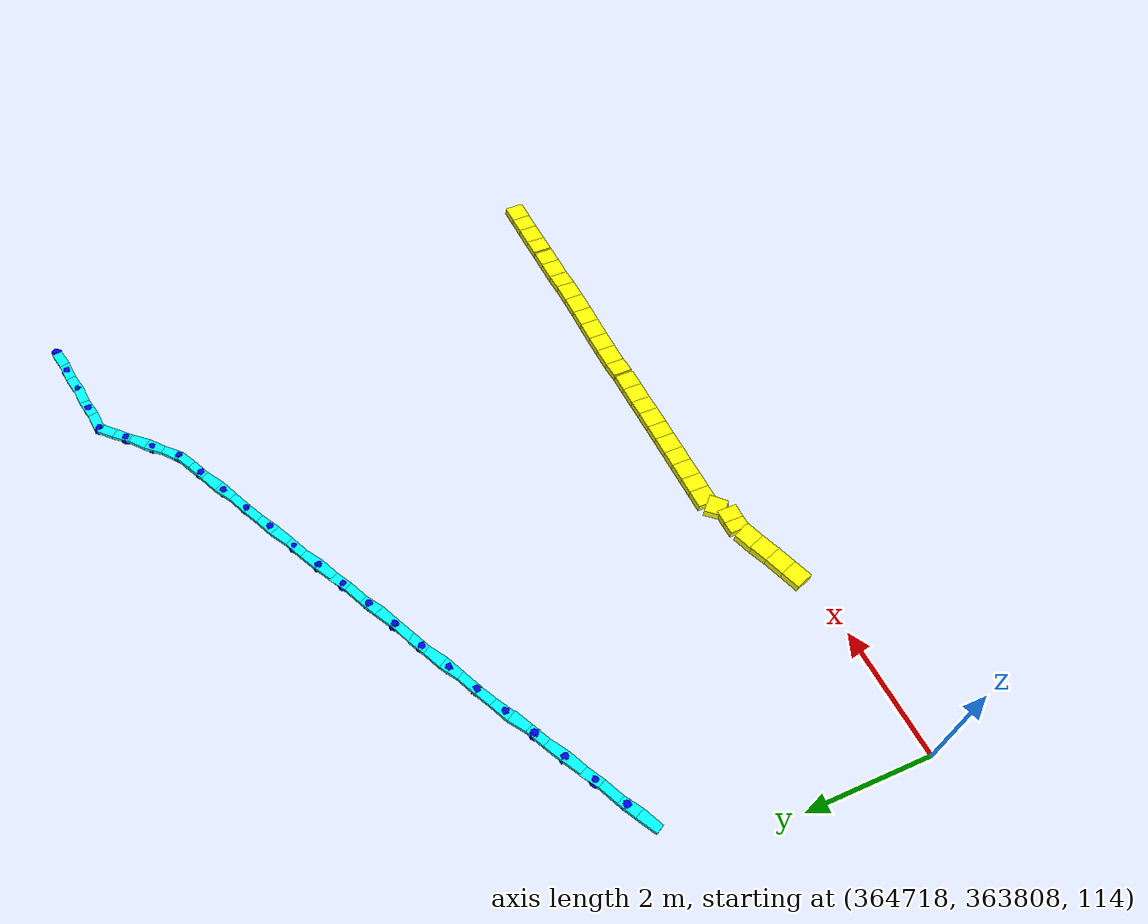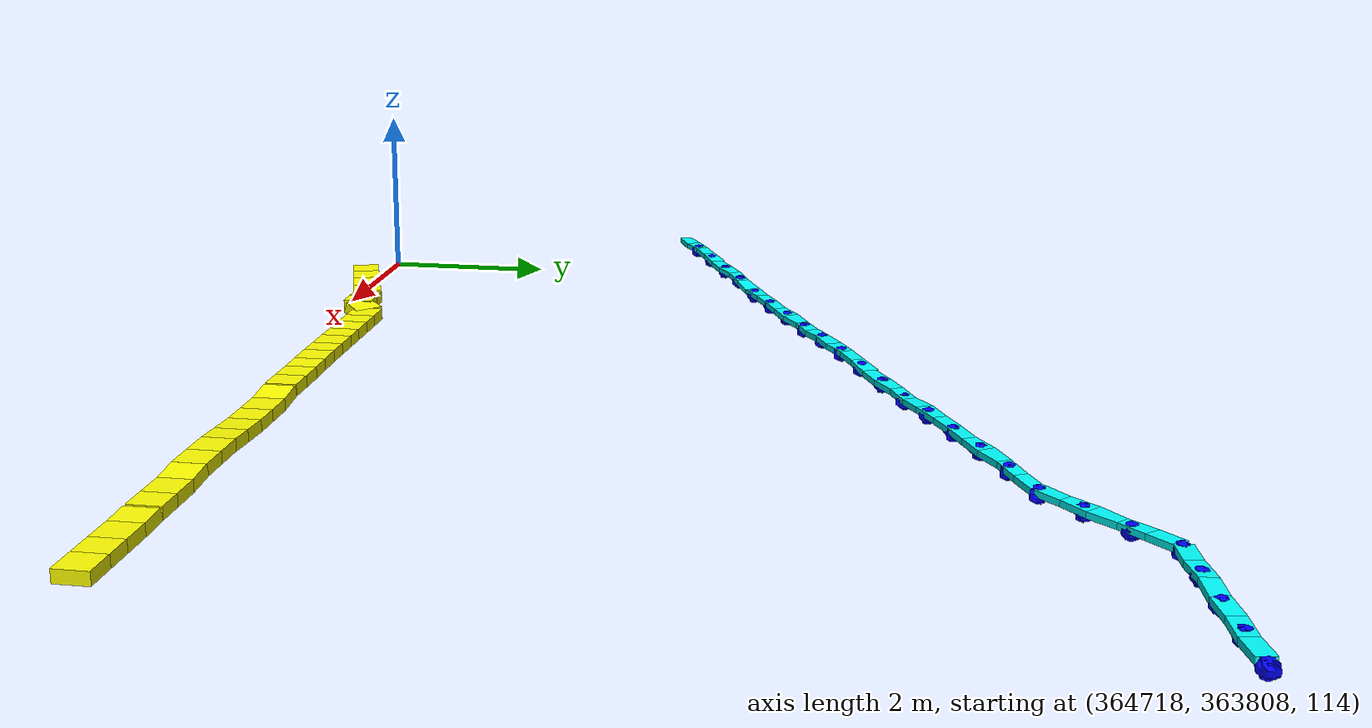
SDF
<sdf version="1.5">
 <world name="default">
  <include><uri>model://sun</uri></include>
  <model name="road_segment_245">
   <static>true</static>
   <pose>364720.8775 363808.49 114.62 0 -0.0 0.3487710036688817</pose>
   <link name="link">
    <collision name="collision">
     <geometry><box><size>0.2926174978018071 0.3 0.12</size></box></geometry>
     <surface><friction><ode><mu>0.02</mu><mu2>0.02</mu2></ode></friction></surface>
    </collision>
    <visual name="visual">
     <geometry><box><size>0.2926174978018071 0.3 0.12</size></box></geometry>
     <material><ambient>1 1 0 1</ambient><diffuse>1 1 0 1</diffuse><emissive>1 1 0 1</emissive></material>
    </visual>
   </link>
  </model>
  <model name="road_segment_246">
   <static>true</static>
   <pose>364721.1525 363808.59 114.6175000001026 0 0.01708548976052507 0.34877100348193735</pose>
   <link name="link">
    <collision name="collision">
     <geometry><box><size>0.29266021254365493 0.3 0.12</size></box></geometry>
     <surface><friction><ode><mu>0.02</mu><mu2>0.02</mu2></ode></friction></surface>
    </collision>
    <visual name="visual">
     <geometry><box><size>0.29266021254365493 0.3 0.12</size></box></geometry>
     <material><ambient>1 1 0 1</ambient><diffuse>1 1 0 1</diffuse><emissive>1 1 0 1</emissive></material>
    </visual>
   </link>
  </model>
  <model name="road_segment_247">
   <static>true</static>
   <pose>364721.4275 363808.69 114.60750000010259 0 0.05121663028058738 0.3487710035499171</pose>
   <link name="link">
    <collision name="collision">
     <geometry><box><size>0.29300170644945156 0.3 0.12</size></box></geometry>
     <surface><friction><ode><mu>0.02</mu><mu2>0.02</mu2></ode></friction></surface>
    </collision>
    <visual name="visual">
     <geometry><box><size>0.29300170644945156 0.3 0.12</size></box></geometry>
     <material><ambient>1 1 0 1</ambient><diffuse>1 1 0 1</diffuse><emissive>1 1 0 1</emissive></material>
    </visual>
   </link>
  </model>
  <model name="road_segment_248">
   <static>true</static>
   <pose>364721.7025 363808.79000000004 114.6 0 -0.0 0.3487710036688817</pose>
   <link name="link">
    <collision name="collision">
     <geometry><box><size>0.2926174978018071 0.3 0.12</size></box></geometry>
     <surface><friction><ode><mu>0.02</mu><mu2>0.02</mu2></ode></friction></surface>
    </collision>
    <visual name="visual">
     <geometry><box><size>0.2926174978018071 0.3 0.12</size></box></geometry>
     <material><ambient>1 1 0 1</ambient><diffuse>1 1 0 1</diffuse><emissive>1 1 0 1</emissive></material>
    </visual>
   </link>
  </model>
  <model name="road_segment_249">
   <static>true</static>
   <pose>364721.94000000006 363808.84 114.6 0 -0.0 0.0</pose>
   <link name="link">
    <collision name="collision">
     <geometry><box><size>0.20000000001164153 0.3 0.12</size></box></geometry>
     <surface><friction><ode><mu>0.2</mu><mu2>0.2</mu2></ode></friction></surface>
    </collision>
    <visual name="visual">
     <geometry><box><size>0.20000000001164153 0.3 0.12</size></box></geometry>
     <material><ambient>1 1 0 1</ambient><diffuse>1 1 0 1</diffuse><emissive>1 1 0 1</emissive></material>
    </visual>
   </link>
  </model>
  <model name="road_segment_250">
   <static>true</static>
   <pose>364722.14 363808.84 114.6 0 -0.0 0.0</pose>
   <link name="link">
    <collision name="collision">
     <geometry><box><size>0.19999999995343387 0.3 0.12</size></box></geometry>
     <surface><friction><ode><mu>0.2</mu><mu2>0.2</mu2></ode></friction></surface>
    </collision>
    <visual name="visual">
     <geometry><box><size>0.19999999995343387 0.3 0.12</size></box></geometry>
     <material><ambient>1 1 0 1</ambient><diffuse>1 1 0 1</diffuse><emissive>1 1 0 1</emissive></material>
    </visual>
   </link>
  </model>
  <model name="road_segment_251">
   <static>true</static>
   <pose>364722.33999999997 363808.94 114.58500000014696 0 0.10567093200392158 0.7853981632519291</pose>
   <link name="link">
    <collision name="collision">
     <geometry><box><size>0.2844292530109974 0.3 0.12</size></box></geometry>
     <surface><friction><ode><mu>0.2</mu><mu2>0.2</mu2></ode></friction></surface>
    </collision>
    <visual name="visual">
     <geometry><box><size>0.2844292530109974 0.3 0.12</size></box></geometry>
     <material><ambient>1 1 0 1</ambient><diffuse>1 1 0 1</diffuse><emissive>1 1 0 1</emissive></material>
    </visual>
   </link>
  </model>
  <model name="road_segment_252">
   <static>true</static>
   <pose>364722.57333333336 363809.04 114.57000000034778 0 -4.038902545803123e-10 0.0</pose>
   <link name="link">
    <collision name="collision">
     <geometry><box><size>0.26666666666278616 0.3 0.12</size></box></geometry>
     <surface><friction><ode><mu>0.02</mu><mu2>0.02</mu2></ode></friction></surface>
    </collision>
    <visual name="visual">
     <geometry><box><size>0.26666666666278616 0.3 0.12</size></box></geometry>
     <material><ambient>1 1 0 1</ambient><diffuse>1 1 0 1</diffuse><emissive>1 1 0 1</emissive></material>
    </visual>
   </link>
  </model>
  <model name="road_segment_253">
   <static>true</static>
   <pose>364722.83999999997 363809.04 114.57000000040163 0 -0.0 0.0</pose>
   <link name="link">
    <collision name="collision">
     <geometry><box><size>0.26666666666278616 0.3 0.12</size></box></geometry>
     <surface><friction><ode><mu>0.02</mu><mu2>0.02</mu2></ode></friction></surface>
    </collision>
    <visual name="visual">
     <geometry><box><size>0.26666666666278616 0.3 0.12</size></box></geometry>
     <material><ambient>1 1 0 1</ambient><diffuse>1 1 0 1</diffuse><emissive>1 1 0 1</emissive></material>
    </visual>
   </link>
  </model>
  <model name="road_segment_254">
   <static>true</static>
   <pose>364723.1066666667 363809.04 114.57000000040163 0 5.3290705182782996e-14 0.0</pose>
   <link name="link">
    <collision name="collision">
     <geometry><box><size>0.26666666666278616 0.3 0.12</size></box></geometry>
     <surface><friction><ode><mu>0.02</mu><mu2>0.02</mu2></ode></friction></surface>
    </collision>
    <visual name="visual">
     <geometry><box><size>0.26666666666278616 0.3 0.12</size></box></geometry>
     <material><ambient>1 1 0 1</ambient><diffuse>1 1 0 1</diffuse><emissive>1 1 0 1</emissive></material>
    </visual>
   </link>
  </model>
  <model name="road_segment_255">
   <static>true</static>
   <pose>364723.3733333333 363809.04 114.57000000026774 0 1.0041034670539973e-09 0.0</pose>
   <link name="link">
    <collision name="collision">
     <geometry><box><size>0.26666666666278616 0.3 0.12</size></box></geometry>
     <surface><friction><ode><mu>0.02</mu><mu2>0.02</mu2></ode></friction></surface>
    </collision>
    <visual name="visual">
     <geometry><box><size>0.26666666666278616 0.3 0.12</size></box></geometry>
     <material><ambient>1 1 0 1</ambient><diffuse>1 1 0 1</diffuse><emissive>1 1 0 1</emissive></material>
    </visual>
   </link>
  </model>
  <model name="road_segment_256">
   <static>true</static>
   <pose>364723.64 363809.04 114.57000000013387 0 -1.0658141034230154e-13 0.0</pose>
   <link name="link">
    <collision name="collision">
     <geometry><box><size>0.2666666667209938 0.3 0.12</size></box></geometry>
     <surface><friction><ode><mu>0.2</mu><mu2>0.2</mu2></ode></friction></surface>
    </collision>
    <visual name="visual">
     <geometry><box><size>0.2666666667209938 0.3 0.12</size></box></geometry>
     <material><ambient>1 1 0 1</ambient><diffuse>1 1 0 1</diffuse><emissive>1 1 0 1</emissive></material>
    </visual>
   </link>
  </model>
  <model name="road_segment_257">
   <static>true</static>
   <pose>364723.90666666673 363809.04 114.57000000013387 0 5.3290705182782996e-14 0.0</pose>
   <link name="link">
    <collision name="collision">
     <geometry><box><size>0.26666666666278616 0.3 0.12</size></box></geometry>
     <surface><friction><ode><mu>0.2</mu><mu2>0.2</mu2></ode></friction></surface>
    </collision>
    <visual name="visual">
     <geometry><box><size>0.26666666666278616 0.3 0.12</size></box></geometry>
     <material><ambient>1 1 0 1</ambient><diffuse>1 1 0 1</diffuse><emissive>1 1 0 1</emissive></material>
    </visual>
   </link>
  </model>
  <model name="road_segment_258">
   <static>true</static>
   <pose>364724.17333333334 363809.04 114.56833333343373 0 0.012499349270545473 0.0</pose>
   <link name="link">
    <collision name="collision">
     <geometry><box><size>0.26668749918321805 0.3 0.12</size></box></geometry>
     <surface><friction><ode><mu>0.2</mu><mu2>0.2</mu2></ode></friction></surface>
    </collision>
    <visual name="visual">
     <geometry><box><size>0.26668749918321805 0.3 0.12</size></box></geometry>
     <material><ambient>1 1 0 1</ambient><diffuse>1 1 0 1</diffuse><emissive>1 1 0 1</emissive></material>
    </visual>
   </link>
  </model>
  <model name="road_segment_259">
   <static>true</static>
   <pose>364724.44000000006 363809.04 114.563333333166 0 0.02499479537521138 0.0</pose>
   <link name="link">
    <collision name="collision">
     <geometry><box><size>0.2667499869910646 0.3 0.12</size></box></geometry>
     <surface><friction><ode><mu>0.2</mu><mu2>0.2</mu2></ode></friction></surface>
    </collision>
    <visual name="visual">
     <geometry><box><size>0.2667499869910646 0.3 0.12</size></box></geometry>
     <material><ambient>1 1 0 1</ambient><diffuse>1 1 0 1</diffuse><emissive>1 1 0 1</emissive></material>
    </visual>
   </link>
  </model>
  <model name="road_segment_260">
   <static>true</static>
   <pose>364724.70666666667 363809.04 114.55999999959839 0 5.3290705182782996e-14 0.0</pose>
   <link name="link">
    <collision name="collision">
     <geometry><box><size>0.26666666666278616 0.3 0.12</size></box></geometry>
     <surface><friction><ode><mu>0.2</mu><mu2>0.2</mu2></ode></friction></surface>
    </collision>
    <visual name="visual">
     <geometry><box><size>0.26666666666278616 0.3 0.12</size></box></geometry>
     <material><ambient>1 1 0 1</ambient><diffuse>1 1 0 1</diffuse><emissive>1 1 0 1</emissive></material>
    </visual>
   </link>
  </model>
  <model name="road_segment_261">
   <static>true</static>
   <pose>364724.99 363809.04 114.55999999959838 0 -0.0 0.0</pose>
   <link name="link">
    <collision name="collision">
     <geometry><box><size>0.29999999998835847 0.3 0.12</size></box></geometry>
     <surface><friction><ode><mu>0.02</mu><mu2>0.02</mu2></ode></friction></surface>
    </collision>
    <visual name="visual">
     <geometry><box><size>0.29999999998835847 0.3 0.12</size></box></geometry>
     <material><ambient>1 1 0 1</ambient><diffuse>1 1 0 1</diffuse><emissive>1 1 0 1</emissive></material>
    </visual>
   </link>
  </model>
  <model name="road_segment_262">
   <static>true</static>
   <pose>364725.29000000004 363809.04 114.54000000029977 0 0.13255152770746775 0.0</pose>
   <link name="link">
    <collision name="collision">
     <geometry><box><size>0.3026549188114938 0.3 0.12</size></box></geometry>
     <surface><friction><ode><mu>0.02</mu><mu2>0.02</mu2></ode></friction></surface>
    </collision>
    <visual name="visual">
     <geometry><box><size>0.3026549188114938 0.3 0.12</size></box></geometry>
     <material><ambient>1 1 0 1</ambient><diffuse>1 1 0 1</diffuse><emissive>1 1 0 1</emissive></material>
    </visual>
   </link>
  </model>
  <model name="road_segment_263">
   <static>true</static>
   <pose>364725.59 363809.04 114.52000000076833 0 1.5522042907848637e-09 0.0</pose>
   <link name="link">
    <collision name="collision">
     <geometry><box><size>0.30000000004656613 0.3 0.12</size></box></geometry>
     <surface><friction><ode><mu>0.02</mu><mu2>0.02</mu2></ode></friction></surface>
    </collision>
    <visual name="visual">
     <geometry><box><size>0.30000000004656613 0.3 0.12</size></box></geometry>
     <material><ambient>1 1 0 1</ambient><diffuse>1 1 0 1</diffuse><emissive>1 1 0 1</emissive></material>
    </visual>
   </link>
  </model>
  <model name="road_segment_264">
   <static>true</static>
   <pose>364725.89 363809.04 114.5200000005355 0 -0.0 0.0</pose>
   <link name="link">
    <collision name="collision">
     <geometry><box><size>0.29999999998835847 0.3 0.12</size></box></geometry>
     <surface><friction><ode><mu>0.02</mu><mu2>0.02</mu2></ode></friction></surface>
    </collision>
    <visual name="visual">
     <geometry><box><size>0.29999999998835847 0.3 0.12</size></box></geometry>
     <material><ambient>1 1 0 1</ambient><diffuse>1 1 0 1</diffuse><emissive>1 1 0 1</emissive></material>
    </visual>
   </link>
  </model>
  <model name="road_segment_265">
   <static>true</static>
   <pose>364726.19000000006 363809.04 114.52750000019135 0 -0.049958393435259124 0.0</pose>
   <link name="link">
    <collision name="collision">
     <geometry><box><size>0.30037476587151263 0.3 0.12</size></box></geometry>
     <surface><friction><ode><mu>0.2</mu><mu2>0.2</mu2></ode></friction></surface>
    </collision>
    <visual name="visual">
     <geometry><box><size>0.30037476587151263 0.3 0.12</size></box></geometry>
     <material><ambient>1 1 0 1</ambient><diffuse>1 1 0 1</diffuse><emissive>1 1 0 1</emissive></material>
    </visual>
   </link>
  </model>
  <model name="road_segment_266">
   <static>true</static>
   <pose>364726.49 363809.04 114.54249999985666 0 -0.049958395786771664 0.0</pose>
   <link name="link">
    <collision name="collision">
     <geometry><box><size>0.3003747659068294 0.3 0.12</size></box></geometry>
     <surface><friction><ode><mu>0.2</mu><mu2>0.2</mu2></ode></friction></surface>
    </collision>
    <visual name="visual">
     <geometry><box><size>0.3003747659068294 0.3 0.12</size></box></geometry>
     <material><ambient>1 1 0 1</ambient><diffuse>1 1 0 1</diffuse><emissive>1 1 0 1</emissive></material>
    </visual>
   </link>
  </model>
  <model name="road_segment_267">
   <static>true</static>
   <pose>364726.79000000004 363809.04 114.54999999986612 0 -0.0 0.0</pose>
   <link name="link">
    <collision name="collision">
     <geometry><box><size>0.29999999998835847 0.3 0.12</size></box></geometry>
     <surface><friction><ode><mu>0.02</mu><mu2>0.02</mu2></ode></friction></surface>
    </collision>
    <visual name="visual">
     <geometry><box><size>0.29999999998835847 0.3 0.12</size></box></geometry>
     <material><ambient>1 1 0 1</ambient><diffuse>1 1 0 1</diffuse><emissive>1 1 0 1</emissive></material>
    </visual>
   </link>
  </model>
  <model name="road_segment_268">
   <static>true</static>
   <pose>364727.08999999997 363809.04 114.54999999986612 0 -0.0 0.0</pose>
   <link name="link">
    <collision name="collision">
     <geometry><box><size>0.29999999998835847 0.3 0.12</size></box></geometry>
     <surface><friction><ode><mu>0.02</mu><mu2>0.02</mu2></ode></friction></surface>
    </collision>
    <visual name="visual">
     <geometry><box><size>0.29999999998835847 0.3 0.12</size></box></geometry>
     <material><ambient>1 1 0 1</ambient><diffuse>1 1 0 1</diffuse><emissive>1 1 0 1</emissive></material>
    </visual>
   </link>
  </model>
  <model name="road_segment_269">
   <static>true</static>
   <pose>364727.39 363809.04 114.53500000006693 0 0.09966865115029519 0.0</pose>
   <link name="link">
    <collision name="collision">
     <geometry><box><size>0.30149626863999845 0.3 0.12</size></box></geometry>
     <surface><friction><ode><mu>0.2</mu><mu2>0.2</mu2></ode></friction></surface>
    </collision>
    <visual name="visual">
     <geometry><box><size>0.30149626863999845 0.3 0.12</size></box></geometry>
     <material><ambient>1 1 0 1</ambient><diffuse>1 1 0 1</diffuse><emissive>1 1 0 1</emissive></material>
    </visual>
   </link>
  </model>
  <model name="road_segment_270">
   <static>true</static>
   <pose>364727.69000000006 363809.04 114.52000000026774 0 -0.0 0.0</pose>
   <link name="link">
    <collision name="collision">
     <geometry><box><size>0.29999999998835847 0.3 0.12</size></box></geometry>
     <surface><friction><ode><mu>0.2</mu><mu2>0.2</mu2></ode></friction></surface>
    </collision>
    <visual name="visual">
     <geometry><box><size>0.29999999998835847 0.3 0.12</size></box></geometry>
     <material><ambient>1 1 0 1</ambient><diffuse>1 1 0 1</diffuse><emissive>1 1 0 1</emissive></material>
    </visual>
   </link>
  </model>
  <model name="road_segment_271">
   <static>true</static>
   <pose>364727.99 363809.04 114.52000000026774 0 -0.0 0.0</pose>
   <link name="link">
    <collision name="collision">
     <geometry><box><size>0.29999999998835847 0.3 0.12</size></box></geometry>
     <surface><friction><ode><mu>0.02</mu><mu2>0.02</mu2></ode></friction></surface>
    </collision>
    <visual name="visual">
     <geometry><box><size>0.29999999998835847 0.3 0.12</size></box></geometry>
     <material><ambient>1 1 0 1</ambient><diffuse>1 1 0 1</diffuse><emissive>1 1 0 1</emissive></material>
    </visual>
   </link>
  </model>
  <model name="road_segment_272">
   <static>true</static>
   <pose>364728.29000000004 363809.04 114.51500000026338 0 0.033320995908561586 0.0</pose>
   <link name="link">
    <collision name="collision">
     <geometry><box><size>0.300166620384728 0.3 0.12</size></box></geometry>
     <surface><friction><ode><mu>0.02</mu><mu2>0.02</mu2></ode></friction></surface>
    </collision>
    <visual name="visual">
     <geometry><box><size>0.300166620384728 0.3 0.12</size></box></geometry>
     <material><ambient>1 1 0 1</ambient><diffuse>1 1 0 1</diffuse><emissive>1 1 0 1</emissive></material>
    </visual>
   </link>
  </model>
  <model name="road_segment_273">
   <static>true</static>
   <pose>364728.58999999997 363809.04 114.51000000019646 0 4.171359554230832e-10 0.0</pose>
   <link name="link">
    <collision name="collision">
     <geometry><box><size>0.29999999998835847 0.3 0.12</size></box></geometry>
     <surface><friction><ode><mu>0.02</mu><mu2>0.02</mu2></ode></friction></surface>
    </collision>
    <visual name="visual">
     <geometry><box><size>0.29999999998835847 0.3 0.12</size></box></geometry>
     <material><ambient>1 1 0 1</ambient><diffuse>1 1 0 1</diffuse><emissive>1 1 0 1</emissive></material>
    </visual>
   </link>
  </model>
  <model name="road_segment_274">
   <static>true</static>
   <pose>364728.89 363809.04 114.51000000013389 0 -0.0 0.0</pose>
   <link name="link">
    <collision name="collision">
     <geometry><box><size>0.30000000004656613 0.3 0.12</size></box></geometry>
     <surface><friction><ode><mu>0.02</mu><mu2>0.02</mu2></ode></friction></surface>
    </collision>
    <visual name="visual">
     <geometry><box><size>0.30000000004656613 0.3 0.12</size></box></geometry>
     <material><ambient>1 1 0 1</ambient><diffuse>1 1 0 1</diffuse><emissive>1 1 0 1</emissive></material>
    </visual>
   </link>
  </model>
  <model name="road_segment_275">
   <static>true</static>
   <pose>364729.19000000006 363809.04 114.51000000013389 0 -0.0 0.0</pose>
   <link name="link">
    <collision name="collision">
     <geometry><box><size>0.29999999998835847 0.3 0.12</size></box></geometry>
     <surface><friction><ode><mu>0.02</mu><mu2>0.02</mu2></ode></friction></surface>
    </collision>
    <visual name="visual">
     <geometry><box><size>0.29999999998835847 0.3 0.12</size></box></geometry>
     <material><ambient>1 1 0 1</ambient><diffuse>1 1 0 1</diffuse><emissive>1 1 0 1</emissive></material>
    </visual>
   </link>
  </model>
  <model name="normal_astar_segment_206">
   <static>true</static>
   <pose>364718.57333333336 363812.1066666667 114.59000000016589 0 1.1128743822399439e-09 0.4636476090881176</pose>
   <link name="link">
    <visual name="visual">
     <geometry><box><size>0.29814239700864903 0.15 0.06</size></box></geometry>
     <material><ambient>0 1 1 1</ambient><diffuse>0 1 1 1</diffuse><emissive>0 1 1 1</emissive></material>
    </visual>
   </link>
  </model>
  <model name="normal_astar_segment_207">
   <static>true</static>
   <pose>364718.83999999997 363812.24 114.58999999999999 0 -0.0 0.4636476089134946</pose>
   <link name="link">
    <visual name="visual">
     <geometry><box><size>0.2981423969826178 0.15 0.06</size></box></geometry>
     <material><ambient>0 1 1 1</ambient><diffuse>0 1 1 1</diffuse><emissive>0 1 1 1</emissive></material>
    </visual>
   </link>
  </model>
  <model name="normal_astar_segment_208">
   <static>true</static>
   <pose>364719.1066666667 363812.3733333333 114.58999999999999 0 -0.0 0.4636476090881176</pose>
   <link name="link">
    <visual name="visual">
     <geometry><box><size>0.29814239700864903 0.15 0.06</size></box></geometry>
     <material><ambient>0 1 1 1</ambient><diffuse>0 1 1 1</diffuse><emissive>0 1 1 1</emissive></material>
    </visual>
   </link>
  </model>
  <model name="normal_astar_segment_209">
   <static>true</static>
   <pose>364719.3733333333 363812.50666666665 114.57499999999999 0 0.10028550445235927 0.4636476089134946</pose>
   <link name="link">
    <visual name="visual">
     <geometry><box><size>0.2996479415556545 0.15 0.06</size></box></geometry>
     <material><ambient>0 1 1 1</ambient><diffuse>0 1 1 1</diffuse><emissive>0 1 1 1</emissive></material>
    </visual>
   </link>
  </model>
  <model name="normal_astar_segment_210">
   <static>true</static>
   <pose>364719.64 363812.64 114.55999999999999 0 -0.0 0.4636476090881176</pose>
   <link name="link">
    <visual name="visual">
     <geometry><box><size>0.29814239700864903 0.15 0.06</size></box></geometry>
     <material><ambient>0 1 1 1</ambient><diffuse>0 1 1 1</diffuse><emissive>0 1 1 1</emissive></material>
    </visual>
   </link>
  </model>
  <model name="normal_astar_segment_211">
   <static>true</static>
   <pose>364719.9066666666 363812.7733333333 114.55999999999999 0 -0.0 0.4636476089134946</pose>
   <link name="link">
    <visual name="visual">
     <geometry><box><size>0.2981423969826178 0.15 0.06</size></box></geometry>
     <material><ambient>0 1 1 1</ambient><diffuse>0 1 1 1</diffuse><emissive>0 1 1 1</emissive></material>
    </visual>
   </link>
  </model>
  <model name="normal_astar_segment_212">
   <static>true</static>
   <pose>364720.17333333334 363812.9066666666 114.55111111140295 0 0.05955795703954773 0.4636476090881176</pose>
   <link name="link">
    <visual name="visual">
     <geometry><box><size>0.29867195759901094 0.15 0.06</size></box></geometry>
     <material><ambient>0 1 1 1</ambient><diffuse>0 1 1 1</diffuse><emissive>0 1 1 1</emissive></material>
    </visual>
   </link>
  </model>
  <model name="normal_astar_segment_213">
   <static>true</static>
   <pose>364720.44 363813.04 114.52611111140295 0 0.10765874722929787 0.4636476088261831</pose>
   <link name="link">
    <visual name="visual">
     <geometry><box><size>0.29987857634739246 0.15 0.06</size></box></geometry>
     <material><ambient>0 1 1 1</ambient><diffuse>0 1 1 1</diffuse><emissive>0 1 1 1</emissive></material>
    </visual>
   </link>
  </model>
  <model name="normal_astar_segment_214">
   <static>true</static>
   <pose>364720.70666666667 363813.17333333334 114.50999999999999 0 -0.0 0.4636476090881176</pose>
   <link name="link">
    <visual name="visual">
     <geometry><box><size>0.29814239700864903 0.15 0.06</size></box></geometry>
     <material><ambient>0 1 1 1</ambient><diffuse>0 1 1 1</diffuse><emissive>0 1 1 1</emissive></material>
    </visual>
   </link>
  </model>
  <model name="normal_astar_segment_215">
   <static>true</static>
   <pose>364720.9733333334 363813.30666666664 114.51 0 -4.7664655745122087e-14 0.4636476089134946</pose>
   <link name="link">
    <visual name="visual">
     <geometry><box><size>0.2981423969826178 0.15 0.06</size></box></geometry>
     <material><ambient>0 1 1 1</ambient><diffuse>0 1 1 1</diffuse><emissive>0 1 1 1</emissive></material>
    </visual>
   </link>
  </model>
  <model name="normal_astar_segment_216">
   <static>true</static>
   <pose>364721.24 363813.43999999994 114.51 0 -0.0 0.4636476090881176</pose>
   <link name="link">
    <visual name="visual">
     <geometry><box><size>0.29814239700864903 0.15 0.06</size></box></geometry>
     <material><ambient>0 1 1 1</ambient><diffuse>0 1 1 1</diffuse><emissive>0 1 1 1</emissive></material>
    </visual>
   </link>
  </model>
  <model name="normal_astar_segment_217">
   <static>true</static>
   <pose>364721.5066666667 363813.5733333333 114.51 0 4.7664655745122087e-14 0.4636476089134946</pose>
   <link name="link">
    <visual name="visual">
     <geometry><box><size>0.2981423969826178 0.15 0.06</size></box></geometry>
     <material><ambient>0 1 1 1</ambient><diffuse>0 1 1 1</diffuse><emissive>0 1 1 1</emissive></material>
    </visual>
   </link>
  </model>
  <model name="normal_astar_segment_218">
   <static>true</static>
   <pose>364721.7733333333 363813.70666666667 114.50999999999998 0 4.766465574096042e-14 0.4636476090881176</pose>
   <link name="link">
    <visual name="visual">
     <geometry><box><size>0.29814239700864903 0.15 0.06</size></box></geometry>
     <material><ambient>0 1 1 1</ambient><diffuse>0 1 1 1</diffuse><emissive>0 1 1 1</emissive></material>
    </visual>
   </link>
  </model>
  <model name="normal_astar_segment_219">
   <static>true</static>
   <pose>364722.04000000004 363813.83999999997 114.50833333340802 0 0.011179873574496057 0.4636476089134946</pose>
   <link name="link">
    <visual name="visual">
     <geometry><box><size>0.298161030298488 0.15 0.06</size></box></geometry>
     <material><ambient>0 1 1 1</ambient><diffuse>0 1 1 1</diffuse><emissive>0 1 1 1</emissive></material>
    </visual>
   </link>
  </model>
  <model name="normal_astar_segment_220">
   <static>true</static>
   <pose>364722.30666666664 363813.97333333327 114.51833333317228 0 -0.07810317610501191 0.4636476090881176</pose>
   <link name="link">
    <visual name="visual">
     <geometry><box><size>0.2990540641916313 0.15 0.06</size></box></geometry>
     <material><ambient>0 1 1 1</ambient><diffuse>0 1 1 1</diffuse><emissive>0 1 1 1</emissive></material>
    </visual>
   </link>
  </model>
  <model name="normal_astar_segment_221">
   <static>true</static>
   <pose>364722.57333333336 363814.1066666667 114.52999999976424 0 -1.5814179481735849e-09 0.4636476090881176</pose>
   <link name="link">
    <visual name="visual">
     <geometry><box><size>0.29814239700864903 0.15 0.06</size></box></geometry>
     <material><ambient>0 1 1 1</ambient><diffuse>0 1 1 1</diffuse><emissive>0 1 1 1</emissive></material>
    </visual>
   </link>
  </model>
  <model name="normal_astar_segment_222">
   <static>true</static>
   <pose>364722.83999999997 363814.24 114.52999999999999 0 -0.0 0.4636476089134946</pose>
   <link name="link">
    <visual name="visual">
     <geometry><box><size>0.2981423969826178 0.15 0.06</size></box></geometry>
     <material><ambient>0 1 1 1</ambient><diffuse>0 1 1 1</diffuse><emissive>0 1 1 1</emissive></material>
    </visual>
   </link>
  </model>
  <model name="normal_astar_segment_223">
   <static>true</static>
   <pose>364723.1066666667 363814.3733333333 114.52999999999999 0 -0.0 0.4636476090881176</pose>
   <link name="link">
    <visual name="visual">
     <geometry><box><size>0.29814239700864903 0.15 0.06</size></box></geometry>
     <material><ambient>0 1 1 1</ambient><diffuse>0 1 1 1</diffuse><emissive>0 1 1 1</emissive></material>
    </visual>
   </link>
  </model>
  <model name="normal_astar_segment_224">
   <static>true</static>
   <pose>364723.3733333333 363814.50666666665 114.51499999999999 0 0.10028550445235927 0.4636476089134946</pose>
   <link name="link">
    <visual name="visual">
     <geometry><box><size>0.2996479415556545 0.15 0.06</size></box></geometry>
     <material><ambient>0 1 1 1</ambient><diffuse>0 1 1 1</diffuse><emissive>0 1 1 1</emissive></material>
    </visual>
   </link>
  </model>
  <model name="normal_astar_segment_225">
   <static>true</static>
   <pose>364723.64 363814.64 114.49999999999999 0 -0.0 0.4636476090881176</pose>
   <link name="link">
    <visual name="visual">
     <geometry><box><size>0.29814239700864903 0.15 0.06</size></box></geometry>
     <material><ambient>0 1 1 1</ambient><diffuse>0 1 1 1</diffuse><emissive>0 1 1 1</emissive></material>
    </visual>
   </link>
  </model>
  <model name="normal_astar_segment_226">
   <static>true</static>
   <pose>364723.9066666666 363814.7733333333 114.49999999999999 0 -0.0 0.4636476089134946</pose>
   <link name="link">
    <visual name="visual">
     <geometry><box><size>0.2981423969826178 0.15 0.06</size></box></geometry>
     <material><ambient>0 1 1 1</ambient><diffuse>0 1 1 1</diffuse><emissive>0 1 1 1</emissive></material>
    </visual>
   </link>
  </model>
  <model name="normal_astar_segment_227">
   <static>true</static>
   <pose>364724.17333333334 363814.9066666666 114.49777777775044 0 0.014906015948904502 0.4636476090881176</pose>
   <link name="link">
    <visual name="visual">
     <geometry><box><size>0.2981755221022818 0.15 0.06</size></box></geometry>
     <material><ambient>0 1 1 1</ambient><diffuse>0 1 1 1</diffuse><emissive>0 1 1 1</emissive></material>
    </visual>
   </link>
  </model>
  <model name="normal_astar_segment_228">
   <static>true</static>
   <pose>364724.44 363815.04 114.50277777775044 0 -0.0484102868016528 0.4636476088261831</pose>
   <link name="link">
    <visual name="visual">
     <geometry><box><size>0.29849209518255565 0.15 0.06</size></box></geometry>
     <material><ambient>0 1 1 1</ambient><diffuse>0 1 1 1</diffuse><emissive>0 1 1 1</emissive></material>
    </visual>
   </link>
  </model>
  <model name="normal_astar_segment_229">
   <static>true</static>
   <pose>364724.70666666667 363815.17333333334 114.50999999999998 0 -4.766465574096042e-14 0.4636476090881176</pose>
   <link name="link">
    <visual name="visual">
     <geometry><box><size>0.29814239700864903 0.15 0.06</size></box></geometry>
     <material><ambient>0 1 1 1</ambient><diffuse>0 1 1 1</diffuse><emissive>0 1 1 1</emissive></material>
    </visual>
   </link>
  </model>
  <model name="normal_astar_segment_230">
   <static>true</static>
   <pose>364724.9733333334 363815.30666666664 114.51 0 -4.7664655745122087e-14 0.4636476089134946</pose>
   <link name="link">
    <visual name="visual">
     <geometry><box><size>0.2981423969826178 0.15 0.06</size></box></geometry>
     <material><ambient>0 1 1 1</ambient><diffuse>0 1 1 1</diffuse><emissive>0 1 1 1</emissive></material>
    </visual>
   </link>
  </model>
  <model name="normal_astar_segment_231">
   <static>true</static>
   <pose>364725.24 363815.43999999994 114.51 0 4.766465574096042e-14 0.4636476090881176</pose>
   <link name="link">
    <visual name="visual">
     <geometry><box><size>0.29814239700864903 0.15 0.06</size></box></geometry>
     <material><ambient>0 1 1 1</ambient><diffuse>0 1 1 1</diffuse><emissive>0 1 1 1</emissive></material>
    </visual>
   </link>
  </model>
  <model name="normal_astar_segment_232">
   <static>true</static>
   <pose>364725.5066666667 363815.5733333333 114.50999999999999 0 -0.0 0.4636476089134946</pose>
   <link name="link">
    <visual name="visual">
     <geometry><box><size>0.2981423969826178 0.15 0.06</size></box></geometry>
     <material><ambient>0 1 1 1</ambient><diffuse>0 1 1 1</diffuse><emissive>0 1 1 1</emissive></material>
    </visual>
   </link>
  </model>
  <model name="normal_astar_segment_233">
   <static>true</static>
   <pose>364725.7733333333 363815.70666666667 114.50999999999999 0 -0.0 0.4636476090881176</pose>
   <link name="link">
    <visual name="visual">
     <geometry><box><size>0.29814239700864903 0.15 0.06</size></box></geometry>
     <material><ambient>0 1 1 1</ambient><diffuse>0 1 1 1</diffuse><emissive>0 1 1 1</emissive></material>
    </visual>
   </link>
  </model>
  <model name="normal_astar_segment_234">
   <static>true</static>
   <pose>364726.04000000004 363815.83999999997 114.50500000023281 0 0.03352844870522458 0.4636476089134946</pose>
   <link name="link">
    <visual name="visual">
     <geometry><box><size>0.2983100549247842 0.15 0.06</size></box></geometry>
     <material><ambient>0 1 1 1</ambient><diffuse>0 1 1 1</diffuse><emissive>0 1 1 1</emissive></material>
    </visual>
   </link>
  </model>
  <model name="normal_astar_segment_235">
   <static>true</static>
   <pose>364726.30666666664 363815.97333333327 114.49500000032741 0 0.033528451188693485 0.4636476090881176</pose>
   <link name="link">
    <visual name="visual">
     <geometry><box><size>0.2983100549756787 0.15 0.06</size></box></geometry>
     <material><ambient>0 1 1 1</ambient><diffuse>0 1 1 1</diffuse><emissive>0 1 1 1</emissive></material>
    </visual>
   </link>
  </model>
  <model name="normal_astar_segment_236">
   <static>true</static>
   <pose>364726.54000000004 363816.14 114.49000000009458 0 6.68834265881018e-10 0.7853981633974483</pose>
   <link name="link">
    <visual name="visual">
     <geometry><box><size>0.2828427124910826 0.15 0.06</size></box></geometry>
     <material><ambient>0 1 1 1</ambient><diffuse>0 1 1 1</diffuse><emissive>0 1 1 1</emissive></material>
    </visual>
   </link>
  </model>
  <model name="normal_astar_segment_237">
   <static>true</static>
   <pose>364726.74 363816.33999999997 114.49 0 -0.0 0.7853981633974483</pose>
   <link name="link">
    <visual name="visual">
     <geometry><box><size>0.2828427124910826 0.15 0.06</size></box></geometry>
     <material><ambient>0 1 1 1</ambient><diffuse>0 1 1 1</diffuse><emissive>0 1 1 1</emissive></material>
    </visual>
   </link>
  </model>
  <model name="normal_astar_segment_238">
   <static>true</static>
   <pose>364726.94 363816.54 114.49 0 -0.0 0.7853981633974483</pose>
   <link name="link">
    <visual name="visual">
     <geometry><box><size>0.2828427124087646 0.15 0.06</size></box></geometry>
     <material><ambient>0 1 1 1</ambient><diffuse>0 1 1 1</diffuse><emissive>0 1 1 1</emissive></material>
    </visual>
   </link>
  </model>
  <model name="normal_astar_segment_239">
   <static>true</static>
   <pose>364727.14 363816.74 114.49 0 -0.0 0.7853981633974483</pose>
   <link name="link">
    <visual name="visual">
     <geometry><box><size>0.2828427124910826 0.15 0.06</size></box></geometry>
     <material><ambient>0 1 1 1</ambient><diffuse>0 1 1 1</diffuse><emissive>0 1 1 1</emissive></material>
    </visual>
   </link>
  </model>
  <model name="normal_astar_segment_240">
   <static>true</static>
   <pose>364727.33999999997 363816.93999999994 114.48999999964202 0 2.5312905010029722e-09 0.7853981633974483</pose>
   <link name="link">
    <visual name="visual">
     <geometry><box><size>0.2828427124910826 0.15 0.06</size></box></geometry>
     <material><ambient>0 1 1 1</ambient><diffuse>0 1 1 1</diffuse><emissive>0 1 1 1</emissive></material>
    </visual>
   </link>
  </model>
  <model name="normal_astar_segment_241">
   <static>true</static>
   <pose>364727.58705882356 363817.06352941174 114.48999999964202 0 -2.4036813503466823e-09 0.15865526215552683</pose>
   <link name="link">
    <visual name="visual">
     <geometry><box><size>0.2978585623686475 0.15 0.06</size></box></geometry>
     <material><ambient>0 1 1 1</ambient><diffuse>0 1 1 1</diffuse><emissive>0 1 1 1</emissive></material>
    </visual>
   </link>
  </model>
  <model name="normal_astar_segment_242">
   <static>true</static>
   <pose>364727.88117647055 363817.11058823526 114.49 0 -0.0 0.15865526215552683</pose>
   <link name="link">
    <visual name="visual">
     <geometry><box><size>0.2978585623686475 0.15 0.06</size></box></geometry>
     <material><ambient>0 1 1 1</ambient><diffuse>0 1 1 1</diffuse><emissive>0 1 1 1</emissive></material>
    </visual>
   </link>
  </model>
  <model name="normal_astar_segment_243">
   <static>true</static>
   <pose>364728.17529411765 363817.15764705883 114.4858823530646 0 0.02764129501174203 0.15865526231761837</pose>
   <link name="link">
    <visual name="visual">
     <geometry><box><size>0.29797238677631527 0.15 0.06</size></box></geometry>
     <material><ambient>0 1 1 1</ambient><diffuse>0 1 1 1</diffuse><emissive>0 1 1 1</emissive></material>
    </visual>
   </link>
  </model>
  <model name="normal_astar_segment_244">
   <static>true</static>
   <pose>364728.46941176476 363817.20470588235 114.47588235306459 0 0.03947710572338218 0.15865526215552683</pose>
   <link name="link">
    <visual name="visual">
     <geometry><box><size>0.2980908108054052 0.15 0.06</size></box></geometry>
     <material><ambient>0 1 1 1</ambient><diffuse>0 1 1 1</diffuse><emissive>0 1 1 1</emissive></material>
    </visual>
   </link>
  </model>
  <model name="normal_astar_segment_245">
   <static>true</static>
   <pose>364728.76352941175 363817.25176470587 114.47 0 -0.0 0.15865526215552683</pose>
   <link name="link">
    <visual name="visual">
     <geometry><box><size>0.2978585623686475 0.15 0.06</size></box></geometry>
     <material><ambient>0 1 1 1</ambient><diffuse>0 1 1 1</diffuse><emissive>0 1 1 1</emissive></material>
    </visual>
   </link>
  </model>
  <model name="normal_astar_segment_246">
   <static>true</static>
   <pose>364729.05764705886 363817.2988235294 114.47 0 -0.0 0.15865526215552683</pose>
   <link name="link">
    <visual name="visual">
     <geometry><box><size>0.2978585623686475 0.15 0.06</size></box></geometry>
     <material><ambient>0 1 1 1</ambient><diffuse>0 1 1 1</diffuse><emissive>0 1 1 1</emissive></material>
    </visual>
   </link>
  </model>
  <model name="dijkstra_marker_131">
   <static>true</static>
   <pose>364718.88444444444 363812.2622222222 114.56 0 0 0</pose>
   <link name="link">
    <visual name="visual">
     <geometry><sphere><radius>0.08</radius></sphere></geometry>
     <material><ambient>0 0 1 1</ambient><diffuse>0 0 1 1</diffuse><emissive>0 0 1 1</emissive></material>
    </visual>
   </link>
  </model>
  <model name="dijkstra_marker_132">
   <static>true</static>
   <pose>364719.3288888889 363812.4844444444 114.5466666669645 0 0 0</pose>
   <link name="link">
    <visual name="visual">
     <geometry><sphere><radius>0.08</radius></sphere></geometry>
     <material><ambient>0 0 1 1</ambient><diffuse>0 0 1 1</diffuse><emissive>0 0 1 1</emissive></material>
    </visual>
   </link>
  </model>
  <model name="dijkstra_marker_133">
   <static>true</static>
   <pose>364719.7733333333 363812.70666666667 114.53 0 0 0</pose>
   <link name="link">
    <visual name="visual">
     <geometry><sphere><radius>0.08</radius></sphere></geometry>
     <material><ambient>0 0 1 1</ambient><diffuse>0 0 1 1</diffuse><emissive>0 0 1 1</emissive></material>
    </visual>
   </link>
  </model>
  <model name="dijkstra_marker_134">
   <static>true</static>
   <pose>364720.21777777775 363812.92888888885 114.5255555557014 0 0 0</pose>
   <link name="link">
    <visual name="visual">
     <geometry><sphere><radius>0.08</radius></sphere></geometry>
     <material><ambient>0 0 1 1</ambient><diffuse>0 0 1 1</diffuse><emissive>0 0 1 1</emissive></material>
    </visual>
   </link>
  </model>
  <model name="dijkstra_marker_135">
   <static>true</static>
   <pose>364720.66222222225 363813.1511111111 114.48 0 0 0</pose>
   <link name="link">
    <visual name="visual">
     <geometry><sphere><radius>0.08</radius></sphere></geometry>
     <material><ambient>0 0 1 1</ambient><diffuse>0 0 1 1</diffuse><emissive>0 0 1 1</emissive></material>
    </visual>
   </link>
  </model>
  <model name="dijkstra_marker_136">
   <static>true</static>
   <pose>364721.1066666667 363813.3733333333 114.48000000000002 0 0 0</pose>
   <link name="link">
    <visual name="visual">
     <geometry><sphere><radius>0.08</radius></sphere></geometry>
     <material><ambient>0 0 1 1</ambient><diffuse>0 0 1 1</diffuse><emissive>0 0 1 1</emissive></material>
    </visual>
   </link>
  </model>
  <model name="dijkstra_marker_137">
   <static>true</static>
   <pose>364721.5511111111 363813.59555555554 114.48000000000002 0 0 0</pose>
   <link name="link">
    <visual name="visual">
     <geometry><sphere><radius>0.08</radius></sphere></geometry>
     <material><ambient>0 0 1 1</ambient><diffuse>0 0 1 1</diffuse><emissive>0 0 1 1</emissive></material>
    </visual>
   </link>
  </model>
  <model name="dijkstra_marker_138">
   <static>true</static>
   <pose>364721.99555555556 363813.81777777773 114.48 0 0 0</pose>
   <link name="link">
    <visual name="visual">
     <geometry><sphere><radius>0.08</radius></sphere></geometry>
     <material><ambient>0 0 1 1</ambient><diffuse>0 0 1 1</diffuse><emissive>0 0 1 1</emissive></material>
    </visual>
   </link>
  </model>
  <model name="dijkstra_marker_139">
   <static>true</static>
   <pose>364722.44 363814.04 114.49999999952851 0 0 0</pose>
   <link name="link">
    <visual name="visual">
     <geometry><sphere><radius>0.08</radius></sphere></geometry>
     <material><ambient>0 0 1 1</ambient><diffuse>0 0 1 1</diffuse><emissive>0 0 1 1</emissive></material>
    </visual>
   </link>
  </model>
  <model name="dijkstra_marker_140">
   <static>true</static>
   <pose>364722.88444444444 363814.2622222222 114.5 0 0 0</pose>
   <link name="link">
    <visual name="visual">
     <geometry><sphere><radius>0.08</radius></sphere></geometry>
     <material><ambient>0 0 1 1</ambient><diffuse>0 0 1 1</diffuse><emissive>0 0 1 1</emissive></material>
    </visual>
   </link>
  </model>
  <model name="dijkstra_marker_141">
   <static>true</static>
   <pose>364723.3288888889 363814.4844444444 114.48666666699941 0 0 0</pose>
   <link name="link">
    <visual name="visual">
     <geometry><sphere><radius>0.08</radius></sphere></geometry>
     <material><ambient>0 0 1 1</ambient><diffuse>0 0 1 1</diffuse><emissive>0 0 1 1</emissive></material>
    </visual>
   </link>
  </model>
  <model name="dijkstra_marker_142">
   <static>true</static>
   <pose>364723.7733333333 363814.70666666667 114.47 0 0 0</pose>
   <link name="link">
    <visual name="visual">
     <geometry><sphere><radius>0.08</radius></sphere></geometry>
     <material><ambient>0 0 1 1</ambient><diffuse>0 0 1 1</diffuse><emissive>0 0 1 1</emissive></material>
    </visual>
   </link>
  </model>
  <model name="dijkstra_marker_143">
   <static>true</static>
   <pose>364724.21777777775 363814.92888888885 114.46111111141444 0 0 0</pose>
   <link name="link">
    <visual name="visual">
     <geometry><sphere><radius>0.08</radius></sphere></geometry>
     <material><ambient>0 0 1 1</ambient><diffuse>0 0 1 1</diffuse><emissive>0 0 1 1</emissive></material>
    </visual>
   </link>
  </model>
  <model name="dijkstra_marker_144">
   <static>true</static>
   <pose>364724.66222222225 363815.1511111111 114.48 0 0 0</pose>
   <link name="link">
    <visual name="visual">
     <geometry><sphere><radius>0.08</radius></sphere></geometry>
     <material><ambient>0 0 1 1</ambient><diffuse>0 0 1 1</diffuse><emissive>0 0 1 1</emissive></material>
    </visual>
   </link>
  </model>
  <model name="dijkstra_marker_145">
   <static>true</static>
   <pose>364725.1066666667 363815.3733333333 114.48000000000002 0 0 0</pose>
   <link name="link">
    <visual name="visual">
     <geometry><sphere><radius>0.08</radius></sphere></geometry>
     <material><ambient>0 0 1 1</ambient><diffuse>0 0 1 1</diffuse><emissive>0 0 1 1</emissive></material>
    </visual>
   </link>
  </model>
  <model name="dijkstra_marker_146">
   <static>true</static>
   <pose>364725.5511111111 363815.59555555554 114.47999999999999 0 0 0</pose>
   <link name="link">
    <visual name="visual">
     <geometry><sphere><radius>0.08</radius></sphere></geometry>
     <material><ambient>0 0 1 1</ambient><diffuse>0 0 1 1</diffuse><emissive>0 0 1 1</emissive></material>
    </visual>
   </link>
  </model>
  <model name="dijkstra_marker_147">
   <static>true</static>
   <pose>364725.99555555556 363815.81777777773 114.48000000000002 0 0 0</pose>
   <link name="link">
    <visual name="visual">
     <geometry><sphere><radius>0.08</radius></sphere></geometry>
     <material><ambient>0 0 1 1</ambient><diffuse>0 0 1 1</diffuse><emissive>0 0 1 1</emissive></material>
    </visual>
   </link>
  </model>
  <model name="dijkstra_marker_148">
   <static>true</static>
   <pose>364726.44 363816.04 114.46000000018918 0 0 0</pose>
   <link name="link">
    <visual name="visual">
     <geometry><sphere><radius>0.08</radius></sphere></geometry>
     <material><ambient>0 0 1 1</ambient><diffuse>0 0 1 1</diffuse><emissive>0 0 1 1</emissive></material>
    </visual>
   </link>
  </model>
  <model name="dijkstra_marker_149">
   <static>true</static>
   <pose>364726.7733333333 363816.3733333333 114.46000000000001 0 0 0</pose>
   <link name="link">
    <visual name="visual">
     <geometry><sphere><radius>0.08</radius></sphere></geometry>
     <material><ambient>0 0 1 1</ambient><diffuse>0 0 1 1</diffuse><emissive>0 0 1 1</emissive></material>
    </visual>
   </link>
  </model>
  <model name="dijkstra_marker_150">
   <static>true</static>
   <pose>364727.1066666667 363816.70666666667 114.46000000000001 0 0 0</pose>
   <link name="link">
    <visual name="visual">
     <geometry><sphere><radius>0.08</radius></sphere></geometry>
     <material><ambient>0 0 1 1</ambient><diffuse>0 0 1 1</diffuse><emissive>0 0 1 1</emissive></material>
    </visual>
   </link>
  </model>
  <model name="dijkstra_marker_151">
   <static>true</static>
   <pose>364727.44 363817.04 114.45999999928405 0 0 0</pose>
   <link name="link">
    <visual name="visual">
     <geometry><sphere><radius>0.08</radius></sphere></geometry>
     <material><ambient>0 0 1 1</ambient><diffuse>0 0 1 1</diffuse><emissive>0 0 1 1</emissive></material>
    </visual>
   </link>
  </model>
  <model name="dijkstra_marker_152">
   <static>true</static>
   <pose>364727.89454545453 363817.11272727273 114.46000000000001 0 0 0</pose>
   <link name="link">
    <visual name="visual">
     <geometry><sphere><radius>0.08</radius></sphere></geometry>
     <material><ambient>0 0 1 1</ambient><diffuse>0 0 1 1</diffuse><emissive>0 0 1 1</emissive></material>
    </visual>
   </link>
  </model>
  <model name="dijkstra_marker_153">
   <static>true</static>
   <pose>364728.3490909091 363817.1854545454 114.44909090933804 0 0 0</pose>
   <link name="link">
    <visual name="visual">
     <geometry><sphere><radius>0.08</radius></sphere></geometry>
     <material><ambient>0 0 1 1</ambient><diffuse>0 0 1 1</diffuse><emissive>0 0 1 1</emissive></material>
    </visual>
   </link>
  </model>
  <model name="dijkstra_marker_154">
   <static>true</static>
   <pose>364728.80363636365 363817.2581818182 114.44000000000001 0 0 0</pose>
   <link name="link">
    <visual name="visual">
     <geometry><sphere><radius>0.08</radius></sphere></geometry>
     <material><ambient>0 0 1 1</ambient><diffuse>0 0 1 1</diffuse><emissive>0 0 1 1</emissive></material>
    </visual>
   </link>
  </model>
  <model name="dijkstra_marker_155">
   <static>true</static>
   <pose>364729.2581818182 363817.33090909093 114.44000000000001 0 0 0</pose>
   <link name="link">
    <visual name="visual">
     <geometry><sphere><radius>0.08</radius></sphere></geometry>
     <material><ambient>0 0 1 1</ambient><diffuse>0 0 1 1</diffuse><emissive>0 0 1 1</emissive></material>
    </visual>
   </link>
  </model>
 </world>
</sdf>
